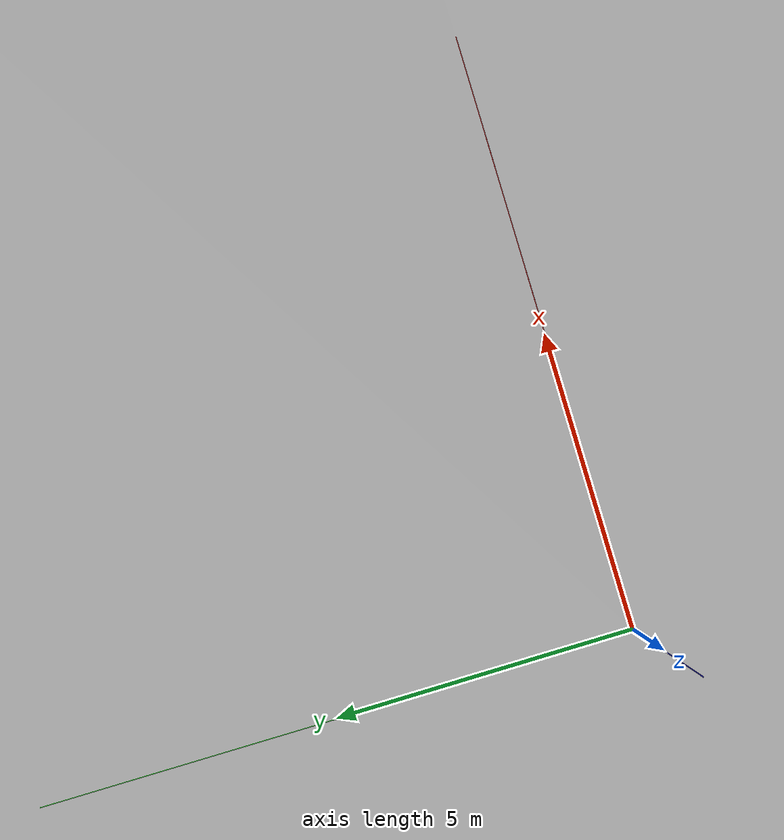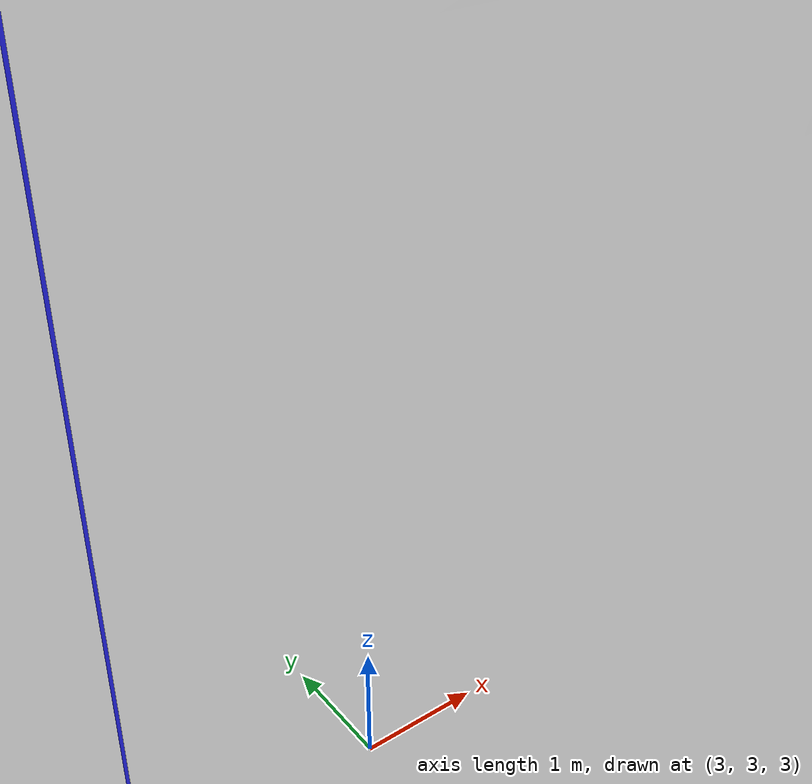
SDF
<?xml version="1.0"?>
<sdf version='1.10'>
  <world name='soylu'>
    <physics name='1ms' type='ignore'>
      <max_step_size>0.001</max_step_size>
      <real_time_factor>1.0</real_time_factor>
    </physics>

    <plugin name='gz::sim::systems::Physics' filename='gz-sim-physics-system' />
    <plugin name='gz::sim::systems::UserCommands' filename='gz-sim-user-commands-system' />
    <plugin name='gz::sim::systems::SceneBroadcaster' filename='gz-sim-scene-broadcaster-system' />
    <plugin name='gz::sim::systems::Contact' filename='gz-sim-contact-system' />
    <plugin name='gz::sim::systems::Imu' filename='gz-sim-imu-system' />
    <plugin name='gz::sim::systems::NavSat' filename='gz-sim-navsat-system' />
    <plugin name='gz::sim::systems::Sensors' filename='gz-sim-sensors-system'>
      <render_engine>ogre2</render_engine>
    </plugin>

    <scene>
      <ambient>1.0 1.0 1.0</ambient>
      <background>0.8 0.8 0.8</background>
      <sky></sky>
    </scene>

    <spherical_coordinates>
      <latitude_deg>45.884622616841256</latitude_deg>
      <longitude_deg>10.839003102599886</longitude_deg>
      <elevation>584</elevation>
      <heading_deg>0</heading_deg>
      <surface_model>EARTH_WGS84</surface_model>
    </spherical_coordinates>

    <light name='sun' type='directional'>
      <cast_shadows>true</cast_shadows>
      <pose>0 0 10 0 0 0</pose>
      <diffuse>0.8 0.8 0.8 1</diffuse>
      <specular>0.8 0.8 0.8 1</specular>
      <attenuation>
        <range>1000</range>
        <constant>0.9</constant>
        <linear>0.01</linear>
        <quadratic>0.001</quadratic>
      </attenuation>
      <direction>-0.5 0.1 -0.9</direction>
    </light>

    <model name='axes'>
      <static>1</static>
      <link name='link'>
        <visual name='r'>
          <cast_shadows>0</cast_shadows>
          <pose>5 0 0.1 0 0 0</pose>
          <geometry>
            <box>
              <size>10 0.01 0.01</size>
            </box>
          </geometry>
          <material>
            <ambient>1 0 0 0.8</ambient>
            <diffuse>1 0 0 0.8</diffuse>
            <emissive>1 0 0 0.8</emissive>
            <specular>0.5 0.5 0.5 0.8</specular>
          </material>
        </visual>
        <visual name='g'>
          <cast_shadows>0</cast_shadows>
          <pose>0 5 0.1 0 0 0</pose>
          <geometry>
            <box>
              <size>0.01 10 0.01</size>
            </box>
          </geometry>
          <material>
            <ambient>0 1 0 0.8</ambient>
            <diffuse>0 1 0 0.8</diffuse>
            <emissive>0 1 0 0.8</emissive>
            <specular>0.5 0.5 0.5 0.8</specular>
          </material>
        </visual>
        <visual name='b'>
          <cast_shadows>0</cast_shadows>
          <pose>0 0 5.1 0 0 0</pose>
          <geometry>
            <box>
              <size>0.01 0.01 10</size>
            </box>
          </geometry>
          <material>
            <ambient>0 0 1 0.8</ambient>
            <diffuse>0 0 1 0.8</diffuse>
            <emissive>0 0 1 0.8</emissive>
            <specular>0.5 0.5 0.5 0.8</specular>
          </material>
        </visual>
        <sensor name='navsat_sensor' type='navsat'>
          <always_on>1</always_on>
          <update_rate>1</update_rate>
        </sensor>
      </link>
    </model>

    <include>
      <uri>package://fpv_drone/urdf/soylu.sdf</uri>
      <pose degrees='true'>0 0 0 0 0 0</pose>
    </include>

  </world>
</sdf>

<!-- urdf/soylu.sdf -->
<sdf version='1.10'>
  <model name='soylu'>
    <link name='soylu_link'>
      <visual name='visual'>
        <geometry>
          <mesh>
            <uri>package://fpv_drone/meshes/soylu/soylu.dae</uri>
          </mesh>
        </geometry>
      </visual>
      <collision name='collision'>
        <geometry>
          <mesh>
            <uri>package://fpv_drone/meshes/soylu/soylu.dae</uri>
          </mesh>
        </geometry>
      </collision>
      <pose>0 0 0 0 0 0</pose>
      <inertial>
        <pose>0 0 0 0 0 0</pose>
        <mass>1</mass>
        <inertia>
          <ixx>1</ixx>
          <ixy>0</ixy>
          <ixz>0</ixz>
          <iyy>1</iyy>
          <iyz>0</iyz>
          <izz>1</izz>
        </inertia>
      </inertial>
      <enable_wind>false</enable_wind>
    </link>
    <pose>0 0 0 0 0 0</pose>
    <static>true</static>
    <self_collide>false</self_collide>
  </model>
</sdf>
